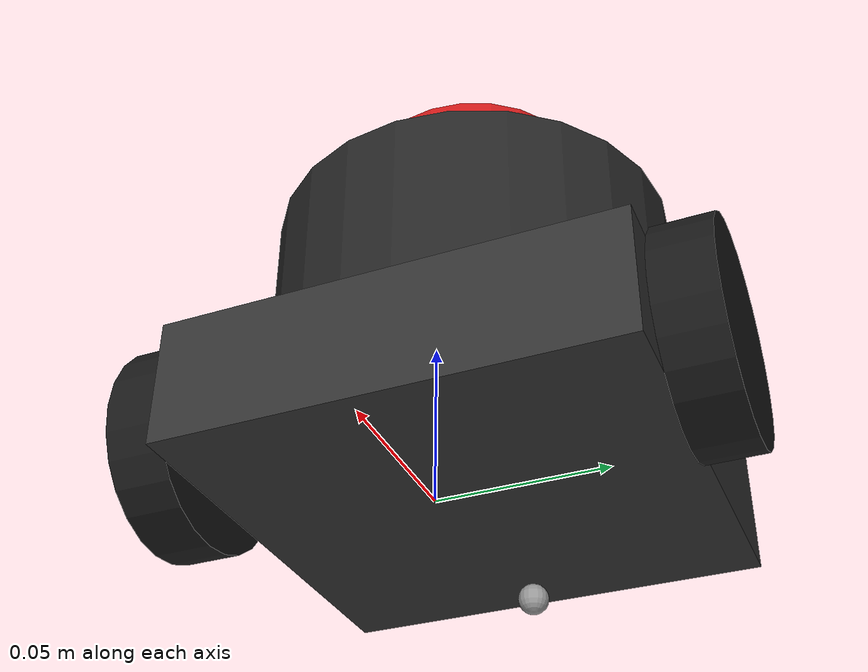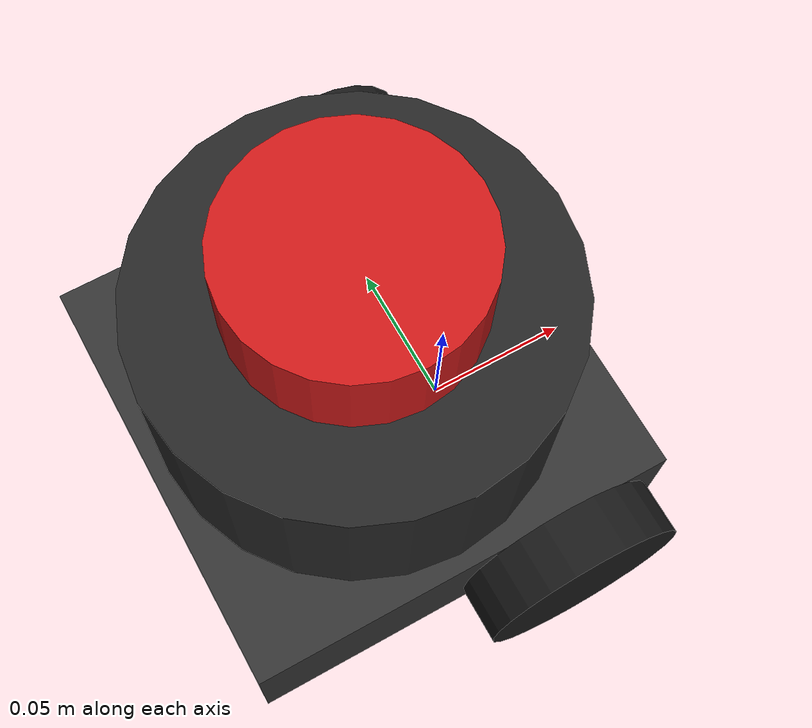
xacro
<?xml version="1.0"?>
<robot xmlns:xacro="http://www.ros.org/wiki/xacro" name="turtlebot3_burger">

  <!-- TurtleBot3 Burger Comparative Baseline Model                       -->
  <!-- Track width: 160mm, Wheel diameter: 66mm, Total mass: ~1.0kg       -->

  <xacro:property name="wheel_radius" value="0.033"/>
  <xacro:property name="wheel_width" value="0.018"/>
  <xacro:property name="wheel_separation" value="0.160"/>
  <xacro:property name="wheel_mass" value="0.028"/>

  <!-- Base Footprint at ground level -->
  <link name="base_footprint"/>

  <joint name="base_joint" type="fixed">
    <parent link="base_footprint"/>
    <child link="base_link"/>
    <origin xyz="0 0 0.033" rpy="0 0 0"/>
  </joint>

  <!-- Base Link -->
  <link name="base_link">
    <!-- Main lower chassis plate -->
    <visual>
      <origin xyz="-0.032 0 0" rpy="0 0 0"/>
      <geometry>
        <box size="0.140 0.140 0.040"/>
      </geometry>
      <material name="dark_grey">
        <color rgba="0.2 0.2 0.2 1.0"/>
      </material>
    </visual>
    <!-- Upper module tier -->
    <visual>
      <origin xyz="-0.032 0 0.050" rpy="0 0 0"/>
      <geometry>
        <cylinder radius="0.065" length="0.060"/>
      </geometry>
      <material name="burger_black">
        <color rgba="0.15 0.15 0.15 1.0"/>
      </material>
    </visual>
    <!-- LDS-01 LiDAR on top tier -->
    <visual>
      <origin xyz="-0.032 0 0.095" rpy="0 0 0"/>
      <geometry>
        <cylinder radius="0.038" length="0.030"/>
      </geometry>
      <material name="lidar_red">
        <color rgba="0.8 0.1 0.1 1.0"/>
      </material>
    </visual>
    <collision>
      <origin xyz="-0.032 0 0.040" rpy="0 0 0"/>
      <geometry>
        <box size="0.140 0.140 0.120"/>
      </geometry>
    </collision>
    <inertial>
      <origin xyz="-0.032 0 0.030" rpy="0 0 0"/>
      <mass value="0.825"/>
      <inertia ixx="0.0022" ixy="0.0" ixz="0.0" iyy="0.0024" iyz="0.0" izz="0.0031"/>
    </inertial>
  </link>

  <!-- Left and Right Wheels                                               -->
  <xacro:macro name="turtlebot_wheel" params="prefix y_reflect">
    <link name="${prefix}_wheel_link">
      <visual>
        <origin xyz="0 0 0" rpy="${pi/2} 0 0"/>
        <geometry>
          <cylinder radius="${wheel_radius}" length="${wheel_width}"/>
        </geometry>
        <material name="tire_black">
          <color rgba="0.1 0.1 0.1 1.0"/>
        </material>
      </visual>
      <collision>
        <origin xyz="0 0 0" rpy="${pi/2} 0 0"/>
        <geometry>
          <cylinder radius="${wheel_radius}" length="${wheel_width}"/>
        </geometry>
      </collision>
      <inertial>
        <origin xyz="0 0 0" rpy="${pi/2} 0 0"/>
        <mass value="${wheel_mass}"/>
        <inertia
          ixx="${(1.0/12.0) * wheel_mass * (3*wheel_radius*wheel_radius + wheel_width*wheel_width)}"
          ixy="0.0" ixz="0.0"
          iyy="${(1.0/12.0) * wheel_mass * (3*wheel_radius*wheel_radius + wheel_width*wheel_width)}"
          iyz="0.0"
          izz="${(1.0/2.0) * wheel_mass * (wheel_radius*wheel_radius)}"/>
      </inertial>
    </link>

    <joint name="${prefix}_wheel_joint" type="continuous">
      <parent link="base_link"/>
      <child link="${prefix}_wheel_link"/>
      <origin xyz="0.0 ${y_reflect * wheel_separation / 2.0} 0.0" rpy="0 0 0"/>
      <axis xyz="0 1 0"/>
    </joint>
  </xacro:macro>

  <xacro:turtlebot_wheel prefix="left" y_reflect="1"/>
  <xacro:turtlebot_wheel prefix="right" y_reflect="-1"/>

  <!-- Passive Rear Caster Ball                                            -->
  <link name="caster_link">
    <visual>
      <origin xyz="0 0 0" rpy="0 0 0"/>
      <geometry>
        <sphere radius="0.005"/>
      </geometry>
      <material name="caster_metal">
        <color rgba="0.6 0.6 0.6 1.0"/>
      </material>
    </visual>
    <collision>
      <origin xyz="0 0 0" rpy="0 0 0"/>
      <geometry>
        <sphere radius="0.005"/>
      </geometry>
    </collision>
    <inertial>
      <origin xyz="0 0 0" rpy="0 0 0"/>
      <mass value="0.005"/>
      <inertia ixx="1e-6" ixy="0" ixz="0" iyy="1e-6" iyz="0" izz="1e-6"/>
    </inertial>
  </link>

  <joint name="caster_joint" type="fixed">
    <parent link="base_link"/>
    <child link="caster_link"/>
    <origin xyz="-0.081 0.0 -0.028" rpy="0 0 0"/>
  </joint>

  <!-- Standardized Sensors: IMU & Tracking Sigil Link                     -->
  <link name="imu_link">
    <inertial>
      <origin xyz="0 0 0" rpy="0 0 0"/>
      <mass value="0.005"/>
      <inertia ixx="1e-6" ixy="0" ixz="0" iyy="1e-6" iyz="0" izz="1e-6"/>
    </inertial>
  </link>

  <joint name="imu_joint" type="fixed">
    <parent link="base_link"/>
    <child link="imu_link"/>
    <origin xyz="-0.032 0 0.068" rpy="0 0 0"/>
  </joint>

  <link name="tracking_sigil_link">
    <inertial>
      <origin xyz="0 0 0" rpy="0 0 0"/>
      <mass value="0.001"/>
      <inertia ixx="1e-7" ixy="0" ixz="0" iyy="1e-7" iyz="0" izz="1e-7"/>
    </inertial>
  </link>

  <joint name="tracking_sigil_joint" type="fixed">
    <parent link="base_link"/>
    <child link="tracking_sigil_link"/>
    <origin xyz="-0.032 0 0.120" rpy="0 0 0"/>
  </joint>

  <!-- Gazebo Physics and Plugins                                          -->
  <gazebo reference="base_link">
    <material>Gazebo/DarkGrey</material>
  </gazebo>

  <gazebo reference="left_wheel_link">
    <mu1>1.0</mu1>
    <mu2>1.0</mu2>
    <kp>1000000.0</kp>
    <kd>100.0</kd>
    <material>Gazebo/FlatBlack</material>
  </gazebo>

  <gazebo reference="right_wheel_link">
    <mu1>1.0</mu1>
    <mu2>1.0</mu2>
    <kp>1000000.0</kp>
    <kd>100.0</kd>
    <material>Gazebo/FlatBlack</material>
  </gazebo>

  <gazebo reference="caster_link">
    <mu1>0.001</mu1>
    <mu2>0.001</mu2>
    <kp>1000000.0</kp>
    <kd>10.0</kd>
    <material>Gazebo/Grey</material>
  </gazebo>

  <!-- Differential Drive Plugin (standardized topics: /cmd_vel, /odom) -->
  <gazebo>
    <plugin name="turtlebot_diff_drive" filename="libgazebo_ros_diff_drive.so">
      <ros>
        <namespace>/</namespace>
        <remapping>cmd_vel:=cmd_vel</remapping>
        <remapping>odom:=odom</remapping>
      </ros>
      <update_rate>100</update_rate>
      <left_joint>left_wheel_joint</left_joint>
      <right_joint>right_wheel_joint</right_joint>
      <wheel_separation>${wheel_separation}</wheel_separation>
      <wheel_diameter>${2 * wheel_radius}</wheel_diameter>
      <max_wheel_torque>1.0</max_wheel_torque>
      <max_wheel_acceleration>5.0</max_wheel_acceleration>
      <publish_odom>true</publish_odom>
      <publish_odom_tf>true</publish_odom_tf>
      <publish_wheel_tf>true</publish_wheel_tf>
      <odometry_frame>odom</odometry_frame>
      <robot_base_frame>base_footprint</robot_base_frame>
    </plugin>
  </gazebo>

  <!-- IMU Sensor Plugin (standardized topic: /imu/data) -->
  <gazebo reference="imu_link">
    <sensor name="turtlebot_imu" type="imu">
      <always_on>true</always_on>
      <update_rate>100</update_rate>
      <plugin name="turtlebot_imu_plugin" filename="libgazebo_ros_imu_sensor.so">
        <ros>
          <namespace>/</namespace>
          <remapping>~/out:=imu/data</remapping>
        </ros>
        <initial_orientation_as_reference>false</initial_orientation_as_reference>
      </plugin>
    </sensor>
  </gazebo>

  <!-- Overhead Ground Truth Pose Plugin (standardized topic: /overhead_tracking/pose) -->
  <gazebo>
    <plugin name="turtlebot_overhead_tracking" filename="libgazebo_ros_p3d.so">
      <ros>
        <namespace>/</namespace>
        <remapping>odom:=overhead_tracking/pose</remapping>
      </ros>
      <body_name>base_footprint</body_name>
      <frame_name>world</frame_name>
      <update_rate>60.0</update_rate>
      <xyz_offset>0 0 0</xyz_offset>
      <rpy_offset>0 0 0</rpy_offset>
      <gaussian_noise>0.001</gaussian_noise>
    </plugin>
  </gazebo>

</robot>
